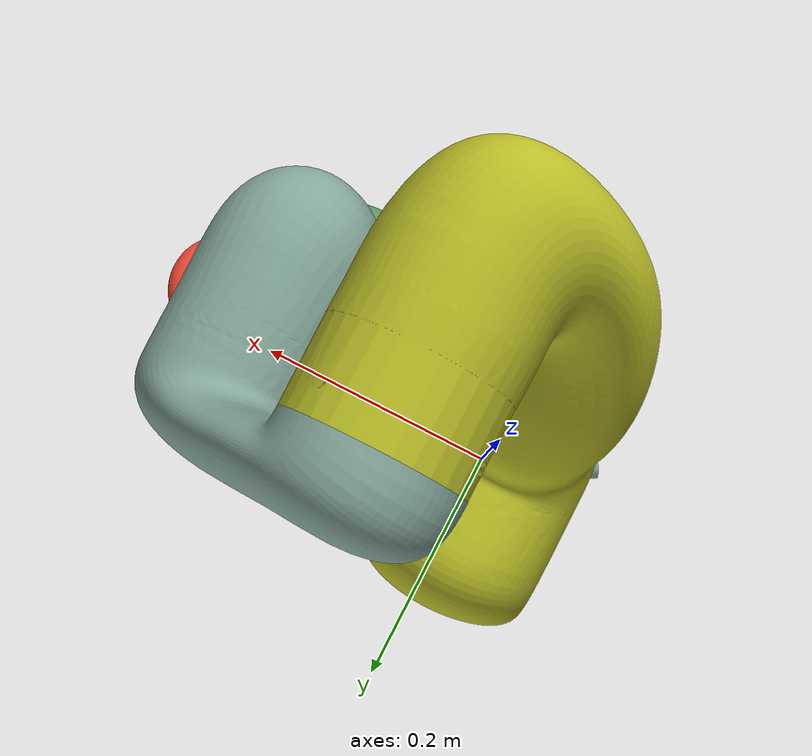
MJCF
<mujoco model="xarm6_policyport">

  <compiler angle="degree"/>

  <default>
    <default class="xarm6">
      <geom type="mesh" contype="1" conaffinity="1"
            solimp="0.99 0.99 0.01" solref="0.01 1"/>
      <joint damping="50" armature="1" frictionloss="0" limited="true"/>
      <velocity ctrllimited="true" forcelimited="true"/>
    </default>
  </default>

  <contact>
    <exclude body1="xarm6_link_base" body2="xarm6_link1"/>
    <exclude body1="xarm6_link1" body2="xarm6_link2"/>
    <exclude body1="xarm6_link2" body2="xarm6_link3"/>
    <exclude body1="xarm6_link3" body2="xarm6_link4"/>
    <exclude body1="xarm6_link4" body2="xarm6_link5"/>
    <exclude body1="xarm6_link5" body2="xarm6_link6"/>
  </contact>

  <asset>
    <material name="xarm6_gray" rgba="0.156863 0.156863 0.156863 1"/>
    <material name="xarm6_blue" rgba="0.513725 0.647059 0.596078 1"/>
    <material name="xarm6_red" rgba="0.984314 0.286275 0.203922 1"/>
    <material name="xarm6_yellow" rgba="0.721569 0.733333 0.14902 1"/>
    <material name="xarm6_green" rgba="0.407843 0.615686 0.415686 1"/>
    <material name="xarm6_white" rgba="0.921569 0.858824 0.698039 1"/>
    <material name="xarm6_stick" rgba="0.5 0.1 0.7 1"/>

    <mesh name="link_base_shell" file="assets/link1.obj" maxhullvert="32"/>
    <mesh name="link1" file="assets/link2.obj" maxhullvert="32"/>
    <mesh name="link2" file="assets/link3.obj" maxhullvert="32"/>
    <mesh name="link3" file="assets/link4.obj" maxhullvert="32"/>
    <mesh name="link4" file="assets/link5.obj" maxhullvert="32"/>
    <mesh name="link5" file="assets/link6.obj" maxhullvert="32"/>
    <mesh name="link6" file="assets/tool_flange.obj" maxhullvert="32"/>
  </asset>

  <worldbody>
    <body name="xarm6_link_base" childclass="xarm6">
      <geom name="xarm6_base_shell" mesh="link_base_shell" euler="0 0 180"
            material="xarm6_blue" mass="2.7"/>

      <body name="xarm6_link1" pos="0 0 0.1538" gravcomp="1">
        <joint name="xarm6_joint1" axis="0 0 1" range="-360 360"/>
        <geom name="xarm6_link1" mesh="link1" euler="0 0 180"
              material="xarm6_red" mass="2.16"/>

        <body name="xarm6_link2" pos="0.000350 0.075295 0.112000" euler="-90 0 -90" gravcomp="1">
          <joint name="xarm6_joint2" axis="0 0 1" range="-114.5916 114.5916"/>
          <geom name="xarm6_link2" mesh="link2" euler="0 0 180"
                material="xarm6_yellow" mass="1.71"/>

          <body name="xarm6_link3" pos="0.284550 0.053312 -0.008303" euler="0 0 90" gravcomp="1">
            <joint name="xarm6_joint3" axis="0 0 1" range="-223.4592 10.8859"/>
            <geom name="xarm6_link3" mesh="link3" euler="0 0 0"
                  material="xarm6_blue" mass="1.384"/>

            <body name="xarm6_link4" pos="0.077700 0.169121 -0.067495" euler="-90 0 0" gravcomp="1">
              <joint name="xarm6_joint4" axis="0 0 1" range="-360 360"
                     stiffness="175" springref="0"/>
              <geom name="xarm6_link4" mesh="link4" euler="0 0 90"
                    material="xarm6_green" mass="1.115"/>

              <body name="xarm6_link5" pos="-0.000006 0.004747 0.172996" euler="90 0 0" gravcomp="1">
                <joint name="xarm6_joint5" axis="0 0 1" range="-94.5352 180"/>
                <geom name="xarm6_link5" mesh="link5" euler="0 0 180"
                      material="xarm6_red" mass="1.275"/>

                <body name="xarm6_link6" pos="0.076010 0.068771 0.004339" euler="-90 0 0" gravcomp="1">
                  <geom name="xarm6_link6" mesh="link6" euler="0 0 90"
                        material="xarm6_white" mass="0.1096"/>
                </body>
              </body>
            </body>
          </body>
        </body>
      </body>
    </body>
  </worldbody>

  <actuator>
    <velocity class="xarm6" name="xarm6_motor1" joint="xarm6_joint1"
              ctrlrange="-0.5 0.5" forcerange="-50 50" kv="300"/>
    <velocity class="xarm6" name="xarm6_motor2" joint="xarm6_joint2"
              ctrlrange="-0.5 0.5" forcerange="-50 50" kv="300"/>
    <velocity class="xarm6" name="xarm6_motor3" joint="xarm6_joint3"
              ctrlrange="-0.5 0.5" forcerange="-32 32" kv="200"/>
    <velocity class="xarm6" name="xarm6_motor4" joint="xarm6_joint4"
              ctrlrange="-0.5 0.5" forcerange="-32 32" kv="200"/>
    <velocity class="xarm6" name="xarm6_motor5" joint="xarm6_joint5"
              ctrlrange="-0.5 0.5" forcerange="-32 32" kv="200"/>
    <!-- xarm6_motor6 removed: joint6 is welded out (see link6 body). -->
  </actuator>
</mujoco>
